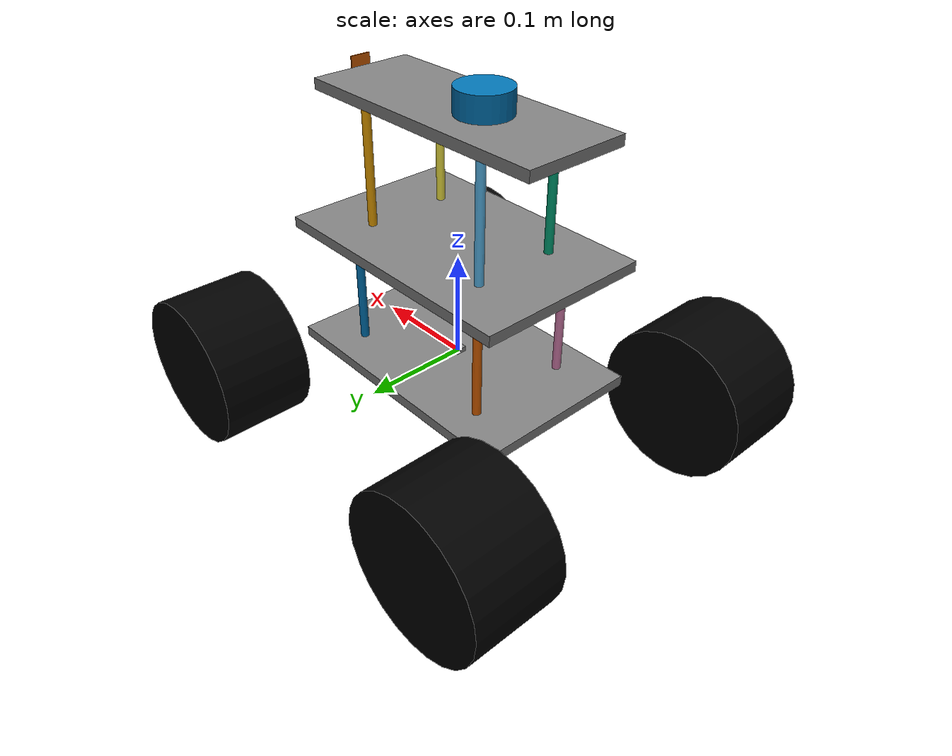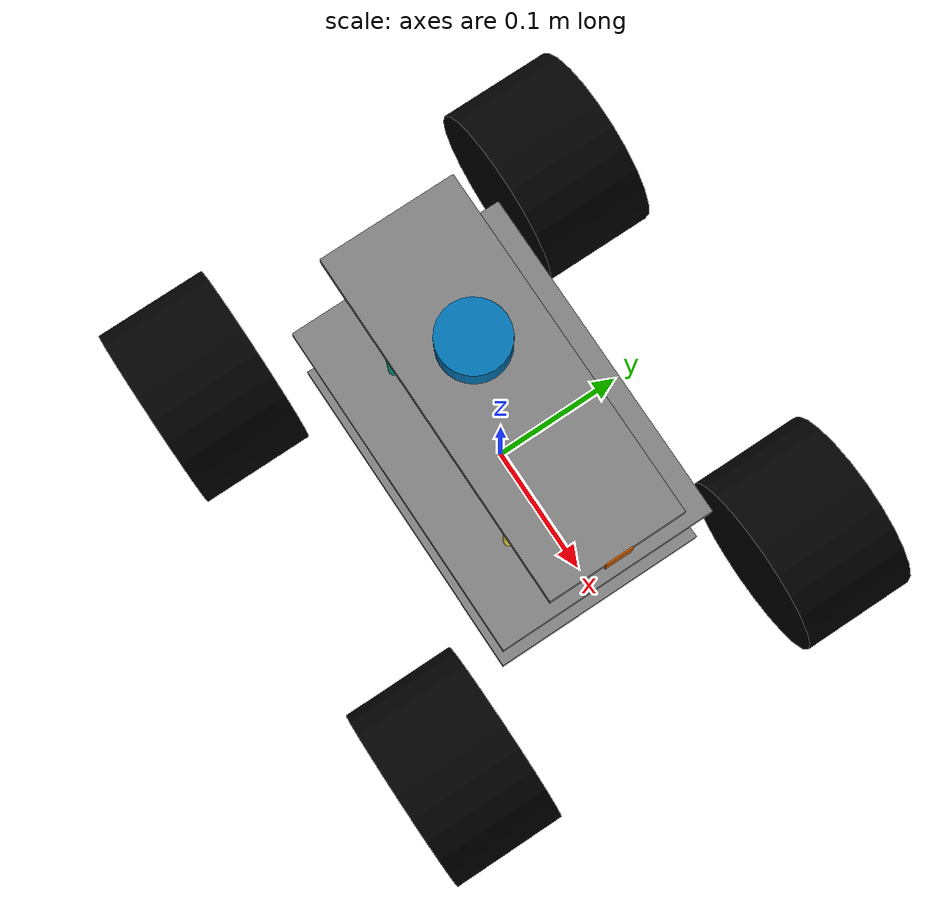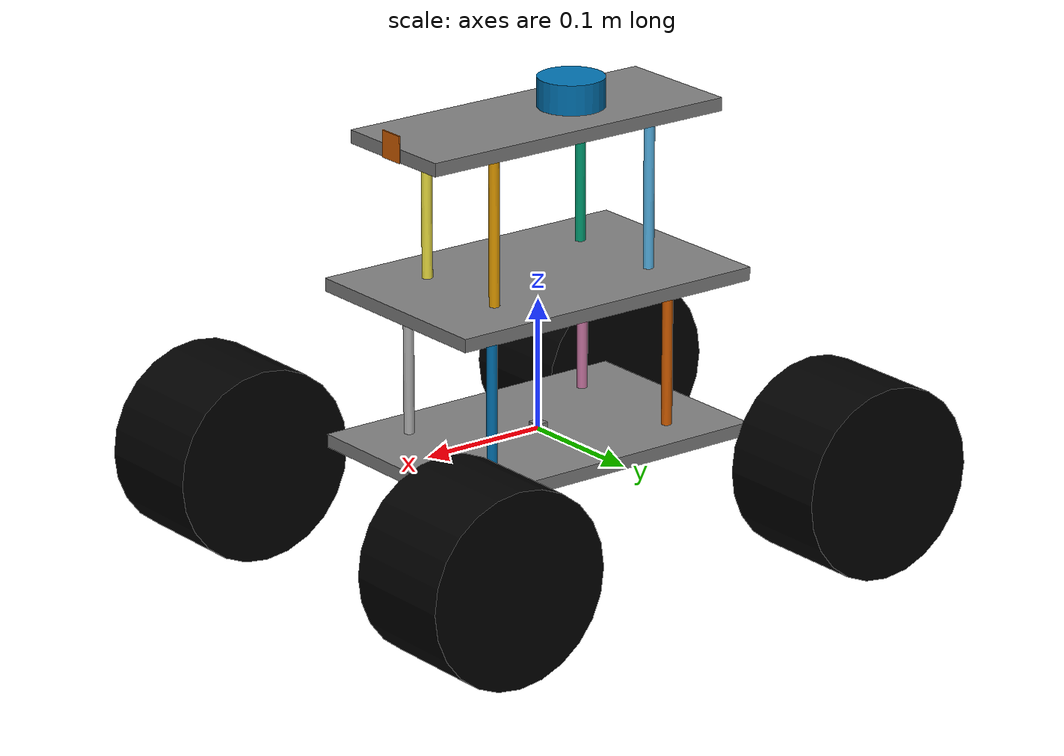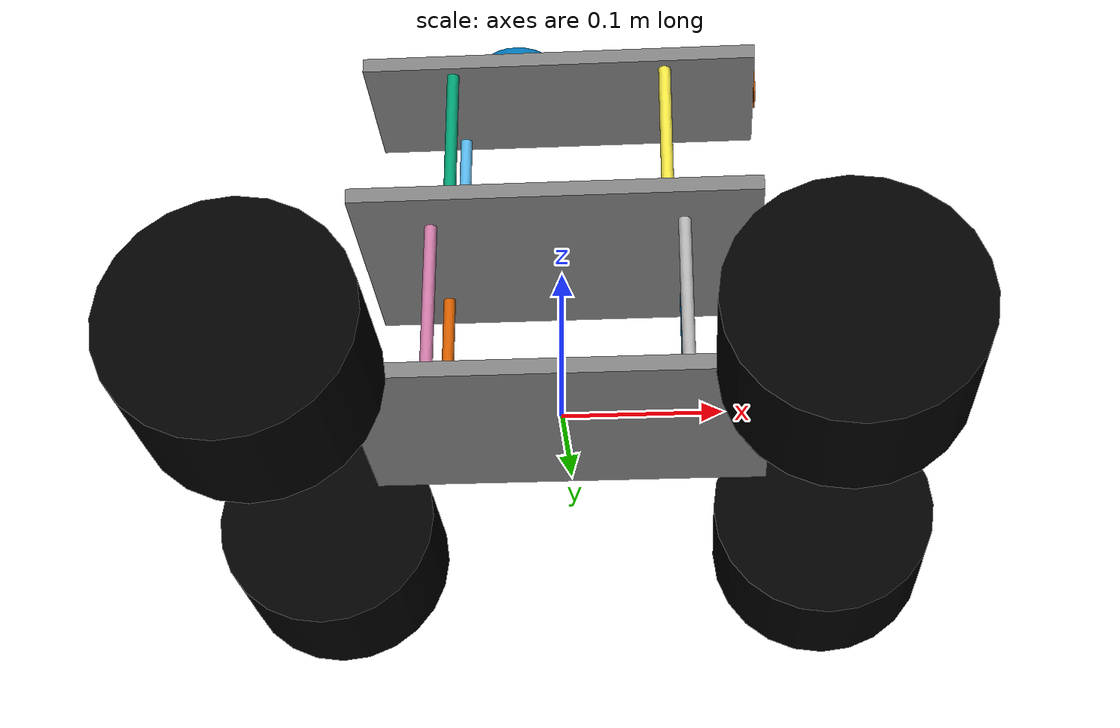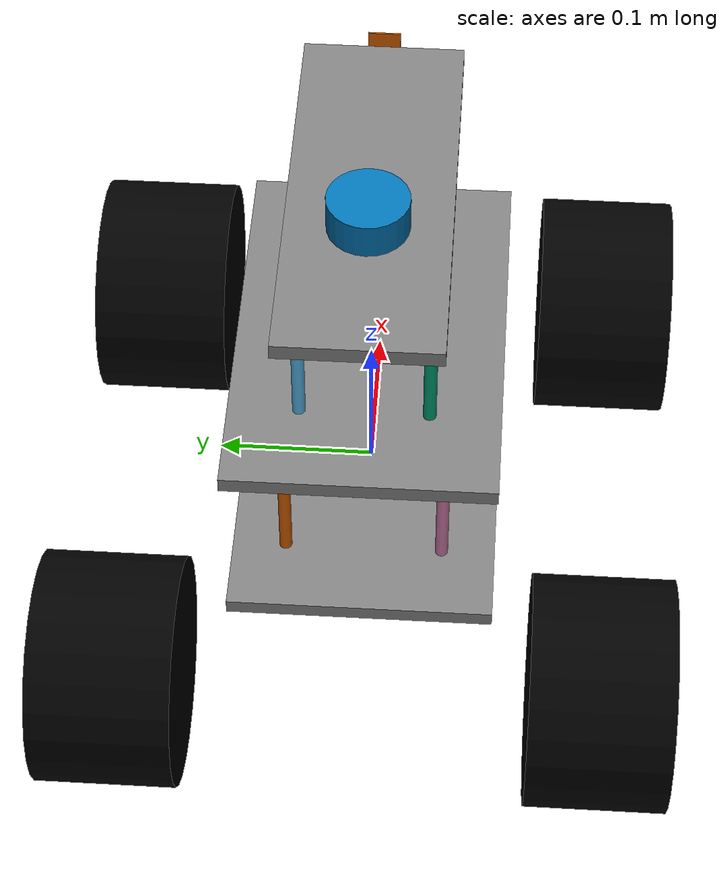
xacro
<?xml version="1.0"?>

<robot name="em_3905" xmlns:xacro="http://www.ros.org/wiki/xacro">
  <!-- Degree-to-radian conversions -->
  <xacro:property name="degrees_45" value="0.785398163"/>
  <xacro:property name="degrees_90" value="1.57079633"/>

  <!-- chassis_length is measured along the x axis, chassis_width
       along the y axis, and chassis_height along the z axis. -->
  <xacro:property name="chassis_length" value="0.258"/>
  <xacro:property name="chassis_width" value="0.168"/>
  <xacro:property name="chassis_height" value="0.01"/>
  <xacro:property name="chassis_mass" value="2.788"/>

  <xacro:property name="hub_dia" value="0.09652"/>
  <xacro:property name="tire_dia" value="0.14605"/>
  <xacro:property name="tire_width" value="0.0889"/>
  <xacro:property name="hex_hub_depth" value="0.01445"/>
  <xacro:property name="wheel_mass" value="0.29"/>

  <xacro:property name="wheelbase" value="0.335"/>
  <xacro:property name="hex_hub_dist" value="0.365"/>
  <xacro:property name="axle_length" value="0.03"/>
  <xacro:property name="wheel_travel" value="0.084"/>
  <xacro:property name="shock_z_offset" value="0.0655"/>

  <xacro:property name="shock_eff_limit" value="12.5106"/>
  <xacro:property name="shock_vel_limit" value="1000"/>

  <xacro:property name="axle_eff_limit" value="5.12766"/>
  <xacro:property name="axle_vel_limit" value="244.8696"/>

  <!-- These constants are used to simulate a Traxxas 2056 servo operated at
       6 V. servo_stall_torque is measured in N m. servo_no_load_speed is
       measured in rad/s. -->
  <xacro:property name="servo_stall_torque" value="0.5649"/>
  <xacro:property name="servo_no_load_speed" value="4.553"/>

  <!-- ctrl_period is gazebo_ros_control's control period. Unit: hertz. -->
  <xacro:property name="ctrl_period" value="0.01"/>

  <material name="battery_mat">
    <color rgba="0 0 1 1"/>
  </material>
  <material name="chassis_mat">
    <color rgba="0.5 0.5 0.5 1"/>
  </material>
  <material name="tire_mat">
    <color rgba="0 0 0 1"/>
  </material>

  <!-- Null inertial element. This is needed to make the model work with
       Gazebo. -->
  <xacro:macro name="null_inertial">
    <inertial>
      <mass value="0.001"/>
      <inertia ixx="0.001" ixy="0" ixz="0" iyy="0.001" iyz="0" izz="0.001"/>
    </inertial>
  </xacro:macro>

  <!-- Inertia of a solid cuboid. Width is measured along the x axis, depth
       along the y axis, and height along the z axis. -->
  <xacro:macro name="solid_cuboid_inertial"
               params="width depth height mass *origin">
    <inertial>
      <xacro:insert_block name="origin"/>
      <mass value="${mass}"/>
      <inertia ixx="${mass * (depth * depth + height * height) / 12}"
               ixy="0" ixz="0"
               iyy="${mass * (width * width + height * height) / 12}"
               iyz="0"
               izz="${mass * (width * width + depth * depth) / 12}"/>
    </inertial>
  </xacro:macro>

  <xacro:macro name="thick_walled_tube_inertial"
               params="inner_rad outer_rad height mass">
    <inertial>
      <mass value="${mass}"/>
      <inertia ixx="${(1 / 12) * mass * (3 * (inner_rad * inner_rad +
                    outer_rad * outer_rad) + height * height)}"
               ixy="0" ixz="0"
               iyy="${(1 / 12) * mass * (3 * (inner_rad * inner_rad +
                    outer_rad * outer_rad) + height * height)}"
               iyz="0"
               izz="${mass * (inner_rad * inner_rad +
                    outer_rad * outer_rad) / 2}"/>
    </inertial>
  </xacro:macro>

  <!-- Shock absorber -->
  <xacro:macro name="shock"
               params="lr_prefix fr_prefix lr_reflect fr_reflect child">
    <joint name="${lr_prefix}_${fr_prefix}_shock" type="prismatic">
      <parent link="chassis"/>
      <child link="${child}"/>

      <origin xyz="${fr_reflect * wheelbase / 2}
                   ${lr_reflect * ((hex_hub_dist / 2) - axle_length)}
                   ${(wheel_travel / 2) - shock_z_offset}"/>
      <axis xyz="0 0 -1"/>
      <limit lower="${-wheel_travel / 2}" upper="${wheel_travel / 2}"
             effort="${shock_eff_limit}" velocity="${shock_vel_limit}"/>
    </joint>

  <transmission name="${lr_prefix}_${fr_prefix}_shock_trans">
    <type>transmission_interface/SimpleTransmission</type>
    <joint name="${lr_prefix}_${fr_prefix}_shock">
      <hardwareInterface>hardware_interface/EffortJointInterface</hardwareInterface>
    </joint>
    <actuator name="${lr_prefix}_${fr_prefix}_shock_act">
      <hardwareInterface>hardware_interface/EffortJointInterface</hardwareInterface>
      <mechanicalReduction>1</mechanicalReduction>
    </actuator>
  </transmission>

  </xacro:macro>

  <!-- The "wheel" macro defines an axle carrier, axle, and wheel. -->
  <xacro:macro name="wheel" params="lr_prefix fr_prefix lr_reflect">
    <link name="${lr_prefix}_${fr_prefix}_axle_carrier">
      <xacro:null_inertial/>
    </link>

    <!-- The left and right axles have the same axis so that identical
         rotation values cause the wheels to rotate in the same direction. -->
    <joint name="${lr_prefix}_${fr_prefix}_axle" type="continuous">
      <parent link="${lr_prefix}_${fr_prefix}_axle_carrier"/>
      <child link="${lr_prefix}_${fr_prefix}_wheel"/>
      <origin rpy="${degrees_90} 0 0"/>
      <axis xyz="0 0 -1"/>
      <limit effort="${axle_eff_limit}" velocity="${axle_vel_limit}"/>
    </joint>

  <transmission name="${lr_prefix}_${fr_prefix}_axle_trans">
    <type>transmission_interface/SimpleTransmission</type>
    <joint name="${lr_prefix}_${fr_prefix}_axle">
      <hardwareInterface>hardware_interface/EffortJointInterface</hardwareInterface>
    </joint>
    <actuator name="${lr_prefix}_${fr_prefix}_axle_act">
      <hardwareInterface>hardware_interface/EffortJointInterface</hardwareInterface>
      <mechanicalReduction>1</mechanicalReduction>
    </actuator>
  </transmission>

    <link name="${lr_prefix}_${fr_prefix}_wheel">
      <visual>
        <origin xyz="0
                     ${lr_reflect * (axle_length - (tire_width /
                     2 - hex_hub_depth))}
                     0"/>
        <geometry>
          <cylinder radius="${tire_dia / 2}" length="${tire_width}"/>
        </geometry>
        <material name="tire_mat"/>
      </visual>

      <collision>
        <origin xyz="0
                     ${lr_reflect * (axle_length - (tire_width /
                     2 - hex_hub_depth))}
                     0"/>
        <geometry>
          <cylinder radius="${tire_dia / 2}" length="${tire_width}"/>
        </geometry>
      </collision>

      <xacro:thick_walled_tube_inertial
          inner_rad="${hub_dia / 2}" outer_rad="${tire_dia / 2}"
          height="${tire_width}" mass="${wheel_mass}"/>
    </link>

    <gazebo reference="${lr_prefix}_${fr_prefix}_wheel">
      <material>Gazebo/Black</material>
    </gazebo>
  </xacro:macro>

  <!-- Front wheel -->
  <xacro:macro name="front_wheel"
               params="lr_prefix fr_prefix lr_reflect fr_reflect">
    <xacro:shock lr_prefix="${lr_prefix}" fr_prefix="${fr_prefix}"
                 lr_reflect="${lr_reflect}" fr_reflect="${fr_reflect}"
                 child="${lr_prefix}_steering_link"/>

    <link name="${lr_prefix}_steering_link">
      <xacro:null_inertial/>
    </link>

    <joint name="${lr_prefix}_steering_joint" type="revolute">
      <parent link="${lr_prefix}_steering_link"/>
      <child link="${lr_prefix}_${fr_prefix}_axle_carrier"/>
      <axis xyz="0 0 1"/>
      <limit lower="${-degrees_45}" upper="${degrees_45}"
             effort="${servo_stall_torque}" velocity="${servo_no_load_speed}"/>
    </joint>

  <transmission name="${lr_prefix}_steering_trans">
    <type>transmission_interface/SimpleTransmission</type>
    <joint name="${lr_prefix}_steering_joint">
      <hardwareInterface>hardware_interface/EffortJointInterface</hardwareInterface>
    </joint>
    <actuator name="${lr_prefix}_${fr_prefix}_shock_act">
      <hardwareInterface>hardware_interface/EffortJointInterface</hardwareInterface>
      <mechanicalReduction>1</mechanicalReduction>
    </actuator>
  </transmission>

    <xacro:wheel lr_prefix="${lr_prefix}" fr_prefix="${fr_prefix}"
                 lr_reflect="${lr_reflect}"/>
  </xacro:macro>

  <!-- Rear wheel -->
  <xacro:macro name="rear_wheel"
               params="lr_prefix fr_prefix lr_reflect fr_reflect">
    <xacro:shock lr_prefix="${lr_prefix}" fr_prefix="${fr_prefix}"
                 lr_reflect="${lr_reflect}" fr_reflect="${fr_reflect}"
                 child="${lr_prefix}_${fr_prefix}_axle_carrier"/>
    <xacro:wheel lr_prefix="${lr_prefix}" fr_prefix="${fr_prefix}"
                 lr_reflect="${lr_reflect}"/>
  </xacro:macro>

  <!-- base_link must have geometry so that its axes can be displayed in
       rviz. -->
  <link name="base_link">
    <visual>
      <geometry>
        <box size="0.01 0.01 0.01"/>
      </geometry>
      <material name="chassis_mat"/>
    </visual>
  </link>
  <gazebo reference="base_link">
    <material>Gazebo/Grey</material>
  </gazebo>

  <!-- Chassis -->
  <link name="chassis">
    <visual>
      <origin xyz="0 0 ${-chassis_height / 2}"/>
      <geometry>
        <box size="${chassis_length} ${chassis_width} ${chassis_height}"/>
      </geometry>
      <material name="chassis_mat"/>
    </visual>

    <collision>
      <origin xyz="0 0 ${-chassis_height / 2}"/>
      <geometry>
        <box size="${chassis_length} ${chassis_width} ${chassis_height}"/>
      </geometry>
    </collision>

    <xacro:solid_cuboid_inertial
        width="${chassis_length}" depth="${chassis_width}"
        height="${chassis_height}" mass="${chassis_mass}">
      <origin xyz="0 0 ${-chassis_height / 2}"/>
    </xacro:solid_cuboid_inertial>
  </link>
  <gazebo reference="chassis">
    <material>Gazebo/Purple</material>
  </gazebo>

  <joint name="base_link_to_chasis" type="fixed">
    <parent link="base_link"/>
    <child link="chassis"/>
  </joint>

  <!-- Upper Part-->
  <link name="upper">
    <visual>
      <origin xyz="0 0 ${0.12+(-chassis_height / 2)}"/>
      <geometry>
        <box size="${chassis_length} ${chassis_width} ${chassis_height}"/>
      </geometry>
      <material name="chassis_mat"/>
    </visual>

    <collision>
      <origin xyz="0 0 ${0.12+(-chassis_height / 2)}"/>
      <geometry>
        <box size="${chassis_length} ${chassis_width} ${chassis_height}"/>
      </geometry>
    </collision>

    <xacro:solid_cuboid_inertial
        width="${chassis_length}" depth="${chassis_width}"
        height="${chassis_height}" mass="${chassis_mass}">
      <origin xyz="0 0 ${-chassis_height / 2}"/>
    </xacro:solid_cuboid_inertial>
  </link>
  <gazebo reference="upper">
    <material>Gazebo/White</material>
  </gazebo>

  <joint name="base_link_to_upper" type="fixed">
    <parent link="base_link"/>
    <child link="upper"/>
  </joint>

<!-- Upper Part2-->
  <link name="upper_two">
    <visual>
      <origin xyz="0 0 ${0.24+(-chassis_height / 2)}"/>
      <geometry>
        <box size="${chassis_length} ${chassis_width-0.068} ${chassis_height}"/>
      </geometry>
      <material name="chassis_mat"/>
    </visual>

    <collision>
      <origin xyz="0 0 ${0.24+(-chassis_height / 2)}"/>
      <geometry>
        <box size="${chassis_length} ${chassis_width-0.068} ${chassis_height}"/>
      </geometry>
    </collision>

    <xacro:solid_cuboid_inertial
        width="${chassis_length}" depth="${chassis_width-0.068}"
        height="${chassis_height}" mass="${chassis_mass}">
      <origin xyz="0 0 ${-chassis_height / 2}"/>
    </xacro:solid_cuboid_inertial>
  </link>
  <gazebo reference="upper_two">
    <material>Gazebo/White</material>
  </gazebo>

  <joint name="base_link_to_upper_two" type="fixed">
    <parent link="base_link"/>
    <child link="upper_two"/>
  </joint>

<!--Leg 01-->

  <link name="leg01">
    <collision>
      <origin xyz="0.08 0.05 ${0.06+(-chassis_height / 2)}"/>
      <geometry>
        <cylinder radius="0.005" length="0.11"/>
      </geometry>
    </collision>
    <visual>
      <origin xyz="0.08 0.05 ${0.06+(-chassis_height / 2)}"/>
      <geometry>
        <cylinder radius="0.004" length="0.11"/>
      </geometry>
    </visual>
    <xacro:null_inertial/>
  </link>

  <joint name="base_link_to_leg01" type="fixed">
    <parent link="base_link"/>
    <child link="leg01"/>
  </joint>

  <gazebo reference="leg01">
    <material value="Gazebo/White"/>
  </gazebo>

<!--Leg 02-->

  <link name="leg02">
    <collision>
      <origin xyz="-0.08 0.05 ${0.06+(-chassis_height / 2)}"/>
      <geometry>
        <cylinder radius="0.005" length="0.11"/>
      </geometry>
    </collision>
    <visual>
      <origin xyz="-0.08 0.05 ${0.06+(-chassis_height / 2)}"/>
      <geometry>
        <cylinder radius="0.004" length="0.11"/>
      </geometry>
    </visual>
    <xacro:null_inertial/>
  </link>

  <joint name="base_link_to_leg02" type="fixed">
    <parent link="base_link"/>
    <child link="leg02"/>
  </joint>

  <gazebo reference="leg02">
    <material value="Gazebo/White"/>
  </gazebo>

<!--Leg 03-->

  <link name="leg03">
    <collision>
      <origin xyz="-0.08 -0.05 ${0.06+(-chassis_height / 2)}"/>
      <geometry>
        <cylinder radius="0.005" length="0.11"/>
      </geometry>
    </collision>
    <visual>
      <origin xyz="-0.08 -0.05 ${0.06+(-chassis_height / 2)}"/>
      <geometry>
        <cylinder radius="0.004" length="0.11"/>
      </geometry>
    </visual>
    <xacro:null_inertial/>
  </link>

  <joint name="base_link_to_leg03" type="fixed">
    <parent link="base_link"/>
    <child link="leg03"/>
  </joint>

  <gazebo reference="leg03">
    <material value="Gazebo/White"/>
  </gazebo>

<!--Leg 04-->

  <link name="leg04">
    <collision>
      <origin xyz="0.08 -0.05 ${0.06+(-chassis_height / 2)}"/>
      <geometry>
        <cylinder radius="0.005" length="0.11"/>
      </geometry>
    </collision>
    <visual>
      <origin xyz="0.08 -0.05 ${0.06+(-chassis_height / 2)}"/>
      <geometry>
        <cylinder radius="0.004" length="0.11"/>
      </geometry>
    </visual>
    <xacro:null_inertial/>
  </link>

  <joint name="base_link_to_leg04" type="fixed">
    <parent link="base_link"/>
    <child link="leg04"/>
  </joint>

  <gazebo reference="leg04">
    <material value="Gazebo/White"/>
  </gazebo>

<!--Leg 1-->

  <link name="leg1">
    <collision>
      <origin xyz="0.07 0.04 ${0.18+(-chassis_height / 2)}"/>
      <geometry>
        <cylinder radius="0.005" length="0.11"/>
      </geometry>
    </collision>
    <visual>
      <origin xyz="0.07 0.04 ${0.18+(-chassis_height / 2)}"/>
      <geometry>
        <cylinder radius="0.004" length="0.11"/>
      </geometry>
    </visual>
    <xacro:null_inertial/>
  </link>

  <joint name="base_link_to_leg1" type="fixed">
    <parent link="base_link"/>
    <child link="leg1"/>
  </joint>

  <gazebo reference="leg1">
    <material value="Gazebo/White"/>
  </gazebo>

<!--Leg 2-->

  <link name="leg2">
    <collision>
      <origin xyz="-0.07 0.04 ${0.18+(-chassis_height / 2)}"/>
      <geometry>
        <cylinder radius="0.005" length="0.11"/>
      </geometry>
    </collision>
    <visual>
      <origin xyz="-0.07 0.04 ${0.18+(-chassis_height / 2)}"/>
      <geometry>
        <cylinder radius="0.004" length="0.11"/>
      </geometry>
    </visual>
    <xacro:null_inertial/>
  </link>

  <joint name="base_link_to_leg2" type="fixed">
    <parent link="base_link"/>
    <child link="leg2"/>
  </joint>

  <gazebo reference="leg2">
    <material value="Gazebo/White"/>
  </gazebo>

<!--Leg 3-->

  <link name="leg3">
    <collision>
      <origin xyz="-0.07 -0.04 ${0.18+(-chassis_height / 2)}"/>
      <geometry>
        <cylinder radius="0.005" length="0.11"/>
      </geometry>
    </collision>
    <visual>
      <origin xyz="-0.07 -0.04 ${0.18+(-chassis_height / 2)}"/>
      <geometry>
        <cylinder radius="0.004" length="0.11"/>
      </geometry>
    </visual>
    <xacro:null_inertial/>
  </link>

  <joint name="base_link_to_leg3" type="fixed">
    <parent link="base_link"/>
    <child link="leg3"/>
  </joint>

  <gazebo reference="leg3">
    <material value="Gazebo/White"/>
  </gazebo>

<!--Leg 4-->

  <link name="leg4">
    <collision>
      <origin xyz="0.07 -0.04 ${0.18+(-chassis_height / 2)}"/>
      <geometry>
        <cylinder radius="0.005" length="0.11"/>
      </geometry>
    </collision>
    <visual>
      <origin xyz="0.07 -0.04 ${0.18+(-chassis_height / 2)}"/>
      <geometry>
        <cylinder radius="0.004" length="0.11"/>
      </geometry>
    </visual>
    <xacro:null_inertial/>
  </link>

  <joint name="base_link_to_leg4" type="fixed">
    <parent link="base_link"/>
    <child link="leg4"/>
  </joint>

  <gazebo reference="leg4">
    <material value="Gazebo/White"/>
  </gazebo>

<!--LIDAR GAZEBO HOKUYO-->
   <link name="laser_link">
     <collision>
       <origin xyz="0 0 0"/>
       <geometry>
          <cylinder radius="0.025" length="0.025"/>
       </geometry>
     </collision>
     <visual>
       <origin xyz="0 0 0"/>
       <geometry>
          <cylinder radius="0.025" length="0.025"/>
       </geometry>
     </visual>
     <xacro:null_inertial/>
  </link>
  <joint name="base_link_to_laser" type="fixed">
    <origin xyz="-0.03 0 ${0.255+(-chassis_height / 2)}"/>
    <parent link="base_link"/>
    <child link="laser_link"/>
  </joint>
 <gazebo reference="laser_link">
  <material value="Gazebo/Grey"/>
  <sensor type="ray" name="head_hokuyo_sensor">
    <pose>0 0 0 0 0 0</pose>
    <visualize>false</visualize>
    <update_rate>10.0</update_rate>
    <ray>
      <scan>
        <horizontal>
          <samples>720</samples>
          <resolution>1</resolution>
          <min_angle>-3.1415</min_angle>
          <max_angle>3.1415</max_angle>
        </horizontal>
      </scan>
      <range>
        <min>0.50</min>
        <max>8.0</max>
        <resolution>0.01</resolution>
      </range>
      <noise>
        <type>gaussian</type>
        <mean>0.0</mean>
        <stddev>0.01</stddev>
      </noise>
    </ray>
    <plugin name="gazebo_ros_head_hokuyo_controller" filename="libgazebo_ros_laser.so">
      <topicName>scan</topicName>
      <frameName>laser_link</frameName>
     </plugin>
    </sensor>
  </gazebo>

<!--CAMERA-->
   <link name="camera_link">
       <collision>
         <origin xyz="0 0 0" rpy="0 0 0"/>
         <geometry>
            <box size="0.001 0.02 0.02"/>
         </geometry>
       </collision>
       <visual>
         <origin xyz="0 0 0" rpy="0 0 0"/>
         <geometry>
            <box size="0.001 0.02 0.02"/>
         </geometry>
       </visual>
       <xacro:null_inertial/>
    </link>
    <joint name="base_link_to_camera" type="fixed">
      <origin xyz="0.13 0.0 ${0.245+(-chassis_height / 2)}" rpy="0 0 0"/>
      <parent link="base_link"/>
      <child link="camera_link"/>
    </joint>

  <gazebo reference="camera_link">
    <material value="Gazebo/Green"/>
    <sensor name="camera" type="depth">
      <update_rate>20</update_rate>
      <camera>
        <horizontal_fov>1.047198</horizontal_fov>
        <image>
          <width>640</width>
          <height>480</height>
          <format>R8G8B8</format>
        </image>
        <clip>
          <near>0.05</near>
          <far>3</far>
        </clip>
      </camera>
      <plugin name="camera_controller" filename="libgazebo_ros_openni_kinect.so">
        <baseline>0.2</baseline>
        <alwaysOn>true</alwaysOn>
        <updateRate>1.0</updateRate>
        <cameraName>camera_ir</cameraName>
        <imageTopicName>/camera/color/image_raw</imageTopicName>
        <cameraInfoTopicName>/camera/color/camera_info</cameraInfoTopicName>
        <depthImageTopicName>/camera/depth/image_raw</depthImageTopicName>
        <depthImageInfoTopicName>/camera/depth/camera_info</depthImageInfoTopicName>
        <pointCloudTopicName>/camera/depth/points</pointCloudTopicName>
        <frameName>camera_link</frameName>
        <pointCloudCutoff>0.5</pointCloudCutoff>
        <pointCloudCutoffMax>3.0</pointCloudCutoffMax>
        <distortionK1>0.00000001</distortionK1>
        <distortionK2>0.00000001</distortionK2>
        <distortionK3>0.00000001</distortionK3>
        <distortionT1>0.00000001</distortionT1>
        <distortionT2>0.00000001</distortionT2>
        <CxPrime>0</CxPrime>
        <Cx>0</Cx>
        <Cy>0</Cy>
        <focalLength>0</focalLength>
        <hackBaseline>0</hackBaseline>
      </plugin>
    </sensor>
   </gazebo>

  <!-- Wheels -->
  <xacro:front_wheel lr_prefix="left" fr_prefix="front"
                     lr_reflect="1" fr_reflect="1"/>
  <xacro:front_wheel lr_prefix="right" fr_prefix="front"
                     lr_reflect="-1" fr_reflect="1"/>
  <xacro:rear_wheel lr_prefix="left" fr_prefix="rear"
                    lr_reflect="1" fr_reflect="-1"/>
  <xacro:rear_wheel lr_prefix="right" fr_prefix="rear"
                    lr_reflect="-1" fr_reflect="-1"/>

  <gazebo>
    <plugin name="gazebo_ros_control" filename="libgazebo_ros_control.so">
            <robotSimType>gazebo_ros_control/DefaultRobotHWSim</robotSimType>
    </plugin>
  </gazebo>

</robot>
